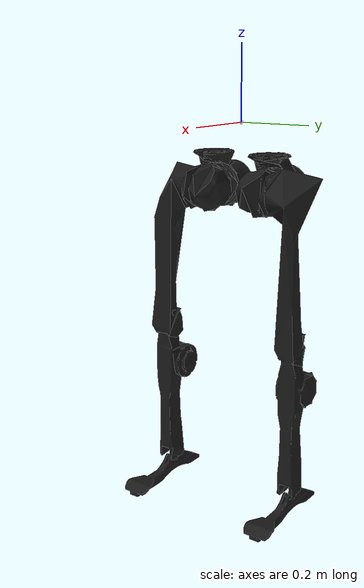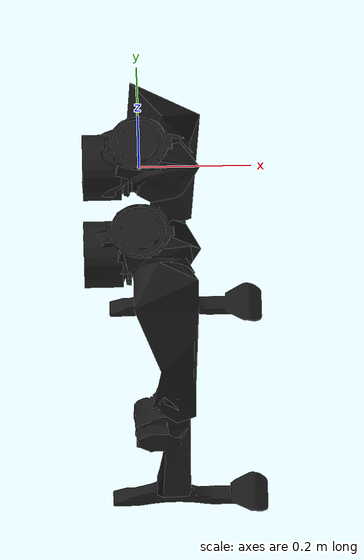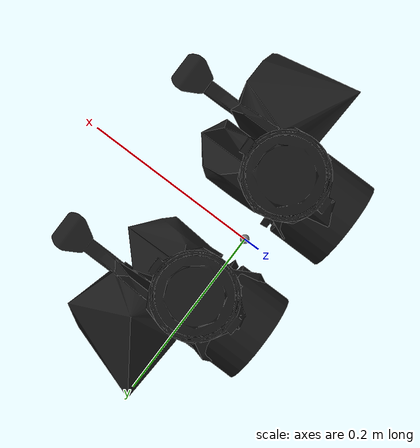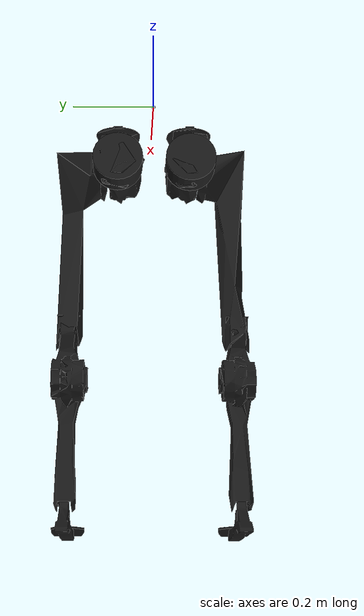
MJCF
<mujoco model="h1_description">
  <compiler angle="radian" meshdir="../meshes/"/>
  <default>
    <joint damping="1" armature="0.1"  frictionloss="0.2"/>
    <motor gear="1" ctrllimited="true" ctrlrange="-100  100" />
  </default>
  <asset>
    <mesh name="pelvis" file="pelvis.STL"/>
    <mesh name="left_hip_yaw_link" file="left_hip_yaw_link.STL"/>
    <mesh name="left_hip_roll_link" file="left_hip_roll_link.STL"/>
    <mesh name="left_hip_pitch_link" file="left_hip_pitch_link.STL"/>
    <mesh name="left_knee_link" file="left_knee_link.STL"/>
    <mesh name="left_ankle_link" file="left_ankle_link.STL"/>
    <mesh name="right_hip_yaw_link" file="right_hip_yaw_link.STL"/>
    <mesh name="right_hip_roll_link" file="right_hip_roll_link.STL"/>
    <mesh name="right_hip_pitch_link" file="right_hip_pitch_link.STL"/>
    <mesh name="right_knee_link" file="right_knee_link.STL"/>
    <mesh name="right_ankle_link" file="right_ankle_link.STL"/>
    <mesh name="torso_link" file="torso_link.STL"/>
    <mesh name="left_shoulder_pitch_link" file="left_shoulder_pitch_link.STL"/>
    <mesh name="left_shoulder_roll_link" file="left_shoulder_roll_link.STL"/>
    <mesh name="left_shoulder_yaw_link" file="left_shoulder_yaw_link.STL"/>
    <mesh name="left_elbow_link" file="left_elbow_link.STL"/>
    <mesh name="right_shoulder_pitch_link" file="right_shoulder_pitch_link.STL"/>
    <mesh name="right_shoulder_roll_link" file="right_shoulder_roll_link.STL"/>
    <mesh name="right_shoulder_yaw_link" file="right_shoulder_yaw_link.STL"/>
    <mesh name="right_elbow_link" file="right_elbow_link.STL"/>
    <mesh name="logo_link" file="logo_link.STL"/>
  </asset>
  <worldbody>
    <body name="base_link">
      <inertial pos="0 0 0" mass="0.001" diaginertia="0.000001 0.000001 0.000001"/>
      <freejoint/>
      <site name="imu" pos="0 0 0"/>
      <body name="left_hip_yaw_link" pos="0 0.0875 -0.1742">
        <inertial pos="-0.04923 0.0001 0.0072" quat="0.69699 0.219193 0.233287 0.641667" mass="2.244" diaginertia="0.00304494 0.00296885 0.00189201"/>
        <joint name="l_hip_roll" pos="0 0 0" axis="0 0 1" range="-0.43 0.43"/>
        <geom type="mesh" contype="0" conaffinity="0" group="1" density="0" rgba="0.1 0.1 0.1 1" mesh="left_hip_yaw_link"/>
        <geom size="0.06 0.035" pos="-0.067 0 0" quat="0.707123 0 0.70709 0" type="cylinder" rgba="0.1 0.1 0.1 1"/>
        <body name="left_hip_roll_link" pos="0.039468 0 0">
          <inertial pos="-0.0058 -0.00319 -9e-05" quat="0.0438242 0.70721 -0.0729075 0.701867" mass="2.232" diaginertia="0.00243264 0.00225325 0.00205492"/>
          <joint name="l_hip_yaw" pos="0 0 0" axis="1 0 0" range="-0.43 0.43"/>
          <geom type="mesh" contype="0" conaffinity="0" group="1" density="0" rgba="0.1 0.1 0.1 1" mesh="left_hip_roll_link"/>
          <body name="left_hip_pitch_link" pos="0 0.11536 0">
            <inertial pos="0.00746 -0.02346 -0.08193" quat="0.979828 0.0513522 -0.0169854 -0.192382" mass="4.152" diaginertia="0.0829503 0.0821457 0.00510909"/>
            <joint name="l_hip_pitch" pos="0 0 0" axis="0 1 0" range="-1.57 1.57"/>
            <geom type="mesh" contype="0" conaffinity="0" group="1" density="0" rgba="0.1 0.1 0.1 1" mesh="left_hip_pitch_link"/>
            <body name="left_knee_link" pos="0 0 -0.4">
              <inertial pos="-0.00136 -0.00512 -0.1384" quat="0.626132 -0.034227 -0.0416277 0.777852" mass="1.721" diaginertia="0.0125237 0.0123104 0.0019428"/>
              <joint name="l_knee_pitch" pos="0 0 0" axis="0 1 0" range="-0.26 2.05"/>
              <geom type="mesh" contype="0" conaffinity="0" group="1" density="0" rgba="0.1 0.1 0.1 1" mesh="left_knee_link"/>
              <body name="left_fake_link" pos="0 0 -0.4">
                <inertial pos="0 0 0" mass="0.001" diaginertia="1e-06 1e-06 1e-06"/>
                <joint name="l_ankle_pitch" pos="0 0 0" axis="0 1 0" range="-0.87 0.52"/>
                <body name="left_ankle_link">
                  <inertial pos="0.0485732 0 -0.0456248" quat="0.489474 0.510309 0.510309 0.489474" mass="0.554448" diaginertia="0.00365084 0.00358777 0.000152075"/>
                  <joint name="l_ankle_roll" pos="0 0 0" axis="1 0 0" range="-0.5 0.5"/>
                  <geom type="mesh" contype="0" conaffinity="0" group="1" density="0" rgba="0.1 0.1 0.1 1" mesh="left_ankle_link"/>
                  <geom type="mesh" rgba="0.1 0.1 0.1 1" mesh="left_ankle_link"/>
                </body>
              </body>
            </body>
          </body>
        </body>
      </body>
      <body name="right_hip_yaw_link" pos="0 -0.0875 -0.1742">
        <inertial pos="-0.04923 -0.0001 0.0072" quat="0.641667 0.233287 0.219193 0.69699" mass="2.244" diaginertia="0.00304494 0.00296885 0.00189201"/>
        <joint name="r_hip_roll" pos="0 0 0" axis="0 0 1" range="-0.43 0.43"/>
        <geom type="mesh" contype="0" conaffinity="0" group="1" density="0" rgba="0.1 0.1 0.1 1" mesh="right_hip_yaw_link"/>
        <geom size="0.06 0.035" pos="-0.067 0 0" quat="0.707123 0 0.70709 0" type="cylinder" rgba="0.1 0.1 0.1 1"/>
        <body name="right_hip_roll_link" pos="0.039468 0 0">
          <inertial pos="-0.0058 0.00319 -9e-05" quat="-0.0438242 0.70721 0.0729075 0.701867" mass="2.232" diaginertia="0.00243264 0.00225325 0.00205492"/>
          <joint name="r_hip_yaw" pos="0 0 0" axis="1 0 0" range="-0.43 0.43"/>
          <geom type="mesh" contype="0" conaffinity="0" group="1" density="0" rgba="0.1 0.1 0.1 1" mesh="right_hip_roll_link"/>
          <body name="right_hip_pitch_link" pos="0 -0.11536 0">
            <inertial pos="0.00746 0.02346 -0.08193" quat="0.979828 -0.0513522 -0.0169854 0.192382" mass="4.152" diaginertia="0.0829503 0.0821457 0.00510909"/>
            <joint name="r_hip_pitch" pos="0 0 0" axis="0 1 0" range="-1.57 1.57"/>
            <geom type="mesh" contype="0" conaffinity="0" group="1" density="0" rgba="0.1 0.1 0.1 1" mesh="right_hip_pitch_link"/>
            <body name="right_knee_link" pos="0 0 -0.4">
              <inertial pos="-0.00136 0.00512 -0.1384" quat="0.777852 -0.0416277 -0.034227 0.626132" mass="1.721" diaginertia="0.0125237 0.0123104 0.0019428"/>
              <joint name="r_knee_pitch" pos="0 0 0" axis="0 1 0" range="-0.26 2.05"/>
              <geom type="mesh" contype="0" conaffinity="0" group="1" density="0" rgba="0.1 0.1 0.1 1" mesh="right_knee_link"/>
              <body name="right_fake_link" pos="0 0 -0.4">
                <inertial pos="0 0 0" mass="0.001" diaginertia="1e-06 1e-06 1e-06"/>
                <joint name="r_ankle_pitch" pos="0 0 0" axis="0 1 0" range="-0.87 0.52"/>
                <body name="right_ankle_link">
                  <inertial pos="0.0485732 0 -0.0456248" quat="0.489474 0.510309 0.510309 0.489474" mass="0.554448" diaginertia="0.00365084 0.00358777 0.000152075"/>
                  <joint name="r_ankle_roll" pos="0 0 0" axis="1 0 0" range="-0.5 0.5"/>
                  <geom type="mesh" contype="0" conaffinity="0" group="1" density="0" rgba="0.1 0.1 0.1 1" mesh="right_ankle_link"/>
                  <geom type="mesh" rgba="0.1 0.1 0.1 1" mesh="right_ankle_link"/>
                </body>
              </body>
            </body>
          </body>
        </body>
      </body>
    </body>
  </worldbody>

 <actuator>
    <!-- User parameter is the maximum no-load motor RPM -->
    <motor name="l_hip_roll" joint="l_hip_roll" ctrlrange="-48 48" user="116"/>
    <motor name="l_hip_yaw" joint="l_hip_yaw" ctrlrange="-66 66" user="160"/>
    <motor name="l_hip_pitch" joint="l_hip_pitch" ctrlrange="-225 225" user="357"/>
    <motor name="l_knee_pitch" joint="l_knee_pitch" ctrlrange="-225 225" user="357"/>
    <motor name="l_ankle_pitch" joint="l_ankle_pitch" ctrlrange="-15 15" user="194"/>
    <motor name="l_ankle_roll" joint="l_ankle_roll" ctrlrange="-30 30" user="194"/>
    <motor name="r_hip_roll" joint="r_hip_roll" ctrlrange="-48 48" user="116"/>
    <motor name="r_hip_yaw" joint="r_hip_yaw" ctrlrange="-66 66" user="160"/>
    <motor name="r_hip_pitch" joint="r_hip_pitch" ctrlrange="-225 225" user="357"/>
    <motor name="r_knee_pitch" joint="r_knee_pitch" ctrlrange="-225 225" user="357"/>
    <motor name="r_ankle_pitch" joint="r_ankle_pitch" ctrlrange="-15 15" user="194"/>
    <motor name="r_ankle_roll" joint="r_ankle_roll" ctrlrange="-30 30" user="194"/>

  </actuator>

  <sensor>
    <accelerometer name="accel" site="imu"/>
    <gyro name="gyro" site="imu"/>
  </sensor>

</mujoco>
